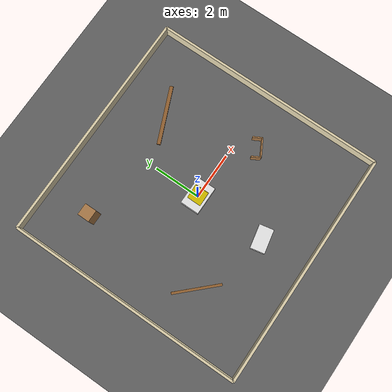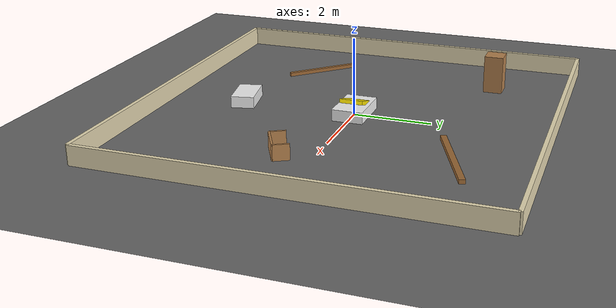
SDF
<sdf version="1.10">
 <world name="test_arena_world">
  <gravity>0 0 -9.8</gravity>
  <physics type="ode">
   <max_step_size>0.01</max_step_size>
   <real_time_factor>1</real_time_factor>
   <real_time_update_rate>1000</real_time_update_rate>
  </physics>
  <plugin name="ignition::gazebo::systems::Physics" filename="libignition-gazebo-physics-system.so"/>
  <plugin name="ignition::gazebo::systems::UserCommands" filename="libignition-gazebo-user-commands-system.so"/>
  <plugin name="ignition::gazebo::systems::SceneBroadcaster" filename="libignition-gazebo-scene-broadcaster-system.so"/>
  <plugin name="ignition::gazebo::systems::Sensors" filename="libignition-gazebo-sensors-system">
   <render_engine>ogre2</render_engine>
  </plugin>
  <scene><ambient>0.6 0.6 0.6 1</ambient><background>0.7 0.7 0.7 1</background><shadows>true</shadows></scene>
  <model name="ground_plane">
   <static>true</static>
   <link name="link">
    <collision name="collision">
     <geometry><plane><normal>0 0 1</normal><size>20 20</size></plane></geometry>
    </collision>
    <visual name="visual">
     <geometry><plane><normal>0 0 1</normal><size>20 20</size></plane></geometry>
     <material>
      <ambient>0.4 0.4 0.4 1</ambient>
      <diffuse>0.4 0.4 0.4 1</diffuse>
      <specular>0.1 0.1 0.1 1</specular>
     </material>
    </visual>
   </link>
  </model>
  <model name="boundary_fence">
   <static>true</static>
   <pose>0 0 0.25 0 0 0</pose>
   <link name="wall_front">
    <pose>5 0 0 0 0 0</pose>
    <collision name="c1"><geometry><box><size>0.1 10 0.5</size></box></geometry></collision>
    <visual name="v1">
     <geometry><box><size>0.1 10 0.5</size></box></geometry>
     <material><ambient>0.9 0.85 0.7 1</ambient><diffuse>0.9 0.85 0.7 1</diffuse></material>
    </visual>
   </link>
   <link name="wall_back">
    <pose>-5 0 0 0 0 0</pose>
    <collision name="c2"><geometry><box><size>0.1 10 0.5</size></box></geometry></collision>
    <visual name="v2">
     <geometry><box><size>0.1 10 0.5</size></box></geometry>
     <material><ambient>0.9 0.85 0.7 1</ambient><diffuse>0.9 0.85 0.7 1</diffuse></material>
    </visual>
   </link>
   <link name="wall_left">
    <pose>0 5 0 0 0 1.5708</pose>
    <collision name="c3"><geometry><box><size>0.1 10 0.5</size></box></geometry></collision>
    <visual name="v3">
     <geometry><box><size>0.1 10 0.5</size></box></geometry>
     <material><ambient>0.9 0.85 0.7 1</ambient><diffuse>0.9 0.85 0.7 1</diffuse></material>
    </visual>
   </link>
   <link name="wall_right">
    <pose>0 -5 0 0 0 1.5708</pose>
    <collision name="c4"><geometry><box><size>0.1 10 0.5</size></box></geometry></collision>
    <visual name="v4">
     <geometry><box><size>0.1 10 0.5</size></box></geometry>
     <material><ambient>0.9 0.85 0.7 1</ambient><diffuse>0.9 0.85 0.7 1</diffuse></material>
    </visual>
   </link>
  </model>
  <model name="wood_strip_1">
   <pose>2 3 0.05 0 0 0.4</pose>
   <link name="link">
    <collision name="c"><geometry><box><size>2.5 0.15 0.1</size></box></geometry></collision>
    <visual name="v">
     <geometry><box><size>2.5 0.15 0.1</size></box></geometry>
     <material><ambient>0.6 0.4 0.2 1</ambient><diffuse>0.6 0.4 0.2 1</diffuse></material>
    </visual>
   </link>
  </model>
  <model name="wood_strip_2">
   <pose>-3 -2 0.05 0 0 -0.8</pose>
   <link name="link">
    <collision name="c"><geometry><box><size>2.0 0.1 0.1</size></box></geometry></collision>
    <visual name="v">
     <geometry><box><size>2.0 0.1 0.1</size></box></geometry>
     <material><ambient>0.6 0.4 0.2 1</ambient><diffuse>0.6 0.4 0.2 1</diffuse></material>
    </visual>
   </link>
  </model>
  <model name="foam_block_mid">
   <pose>0 0 0.15 0 0 0</pose>
   <link name="link">
    <collision name="c"><geometry><box><size>1.2 0.8 0.3</size></box></geometry></collision>
    <visual name="v">
     <geometry><box><size>1.2 0.8 0.3</size></box></geometry>
     <material><ambient>0.95 0.95 0.95 1</ambient><diffuse>0.95 0.95 0.95 1</diffuse></material>
    </visual>
   </link>
  </model>
  <model name="foam_block_right">
   <pose>0 -3 0.15 0 0 0.2</pose>
   <link name="link">
    <collision name="c"><geometry><box><size>1.0 0.6 0.3</size></box></geometry></collision>
    <visual name="v">
     <geometry><box><size>1.0 0.6 0.3</size></box></geometry>
     <material><ambient>0.95 0.95 0.95 1</ambient><diffuse>0.95 0.95 0.95 1</diffuse></material>
    </visual>
   </link>
  </model>
  <model name="yellow_wedge">
   <pose>0 0 0.35 0 -0.3 0</pose>
   <link name="link">
    <collision name="c"><geometry><box><size>0.6 0.6 0.1</size></box></geometry></collision>
    <visual name="v">
     <geometry><box><size>0.6 0.6 0.1</size></box></geometry>
     <material><ambient>1 0.9 0 1</ambient><diffuse>1 0.9 0 1</diffuse></material>
    </visual>
   </link>
  </model>
  <model name="standing_box">
   <pose>-3 3 0.5 0 0 0</pose>
   <link name="link">
    <collision name="c"><geometry><box><size>0.5 0.5 1.0</size></box></geometry></collision>
    <visual name="v">
     <geometry><box><size>0.5 0.5 1.0</size></box></geometry>
     <material><ambient>0.7 0.5 0.3 1</ambient><diffuse>0.7 0.5 0.3 1</diffuse></material>
    </visual>
   </link>
  </model>
  <model name="u_barrier">
   <pose>3 -1 0.2 0 0 0.5</pose>
   <link name="base">
    <visual name="v">
     <geometry><box><size>0.8 0.05 0.4</size></box></geometry>
     <material><ambient>0.7 0.5 0.3 1</ambient><diffuse>0.7 0.5 0.3 1</diffuse></material>
    </visual>
   </link>
   <link name="side_l">
    <pose>0.4 0.2 0 0 0 1.57</pose>
    <visual name="v">
     <geometry><box><size>0.4 0.05 0.4</size></box></geometry>
     <material><ambient>0.7 0.5 0.3 1</ambient><diffuse>0.7 0.5 0.3 1</diffuse></material>
    </visual>
   </link>
   <link name="side_r">
    <pose>-0.4 0.2 0 0 0 1.57</pose>
    <visual name="v">
     <geometry><box><size>0.4 0.05 0.4</size></box></geometry>
     <material><ambient>0.7 0.5 0.3 1</ambient><diffuse>0.7 0.5 0.3 1</diffuse></material>
    </visual>
   </link>
  </model>
  <light name="sun" type="directional">
   <pose>0 0 10 0 0 0</pose>
   <intensity>1.2</intensity>
   <direction>-0.5 0.1 -0.9</direction>
   <diffuse>1 1 1 1</diffuse>
   <specular>0.5 0.5 0.5 1</specular>
  </light>
 </world>
</sdf>
